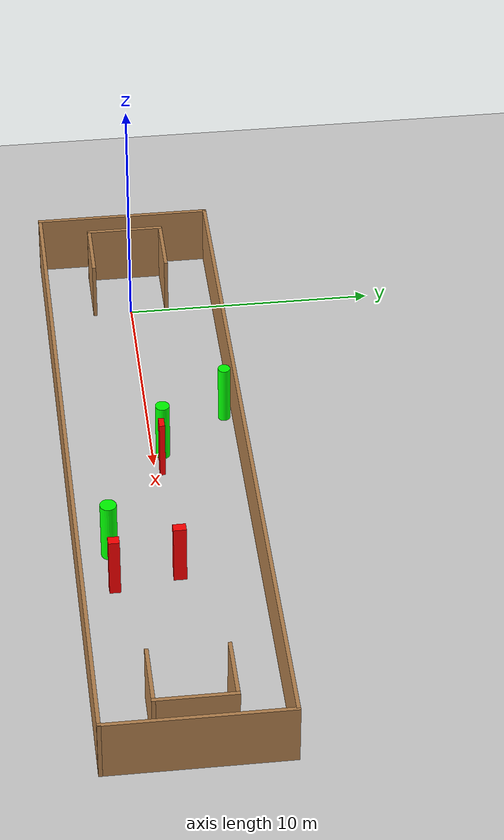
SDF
<sdf version="1.7">
 <world name="default">
  <light name="sun" type="directional">
   <pose>0 0 10 0 -0 0</pose>
   <diffuse>0.8 0.8 0.8 1</diffuse>
   <specular>0.2 0.2 0.2 1</specular>
   <attenuation>
    <range>1000</range>
    <constant>0.9</constant>
    <linear>0.01</linear>
    <quadratic>0.001</quadratic>
   </attenuation>
   <direction>-0.5 0.1 -0.9</direction>
   <spot><inner_angle>0</inner_angle><outer_angle>0</outer_angle><falloff>0</falloff></spot>
  </light>
  <model name="ground_plane">
   <static>1</static>
   <link name="link">
    <collision name="collision">
     <geometry><plane><normal>0 0 1</normal><size>100 100</size></plane></geometry>
     <surface>
      <contact><collide_bitmask>65535</collide_bitmask></contact>
      <friction><ode><mu>100</mu><mu2>50</mu2></ode></friction>
     </surface>
    </collision>
    <visual name="visual">
     <cast_shadows>0</cast_shadows>
     <geometry><plane><normal>0 0 1</normal><size>100 100</size></plane></geometry>
     <material>
      <script><uri>file://media/materials/scripts/gazebo.material</uri><name>Gazebo/Grey</name></script>
     </material>
    </visual>
   </link>
  </model>
  <gravity>0 0 -9.8</gravity>
  <magnetic_field>6e-06 2.3e-05 -4.2e-05</magnetic_field>
  <atmosphere type="adiabatic"/>
  <physics type="ode">
   <max_step_size>0.001</max_step_size>
   <real_time_factor>1</real_time_factor>
   <real_time_update_rate>1000</real_time_update_rate>
  </physics>
  <scene><ambient>0.4 0.4 0.4 1</ambient><background>0.7 0.7 0.7 1</background><shadows>1</shadows></scene>
  <spherical_coordinates>
   <surface_model>EARTH_WGS84</surface_model>
   <latitude_deg>0</latitude_deg>
   <longitude_deg>0</longitude_deg>
   <elevation>0</elevation>
   <heading_deg>0</heading_deg>
  </spherical_coordinates>
  <model name="my_base_walls">
   <link name="Wall_0">
    <collision name="Wall_0_Collision">
     <geometry><box><size>7.15 0.15 2.5</size></box></geometry>
     <pose>0 0 1.25 0 -0 0</pose>
    </collision>
    <visual name="Wall_0_Visual">
     <pose>0 0 1.25 0 -0 0</pose>
     <geometry><box><size>7.15 0.15 2.5</size></box></geometry>
     <material>
      <script><uri>file://media/materials/scripts/gazebo.material</uri><name>Gazebo/Wood</name></script>
      <ambient>1 1 1 1</ambient>
     </material>
     <meta><layer>0</layer></meta>
    </visual>
    <pose>-15 0 0 0 -0 1.5708</pose>
   </link>
   <link name="Wall_10">
    <collision name="Wall_10_Collision">
     <geometry><box><size>2.65 0.15 2.5</size></box></geometry>
     <pose>0 0 1.25 0 -0 0</pose>
    </collision>
    <visual name="Wall_10_Visual">
     <pose>0 0 1.25 0 -0 0</pose>
     <geometry><box><size>2.65 0.15 2.5</size></box></geometry>
     <material>
      <script><uri>file://media/materials/scripts/gazebo.material</uri><name>Gazebo/Wood</name></script>
      <ambient>1 1 1 1</ambient>
     </material>
     <meta><layer>0</layer></meta>
    </visual>
    <pose>-12.75 -1.5 0 0 -0 0</pose>
   </link>
   <link name="Wall_12">
    <collision name="Wall_12_Collision">
     <geometry><box><size>2.65 0.15 2.5</size></box></geometry>
     <pose>0 0 1.25 0 -0 0</pose>
    </collision>
    <visual name="Wall_12_Visual">
     <pose>0 0 1.25 0 -0 0</pose>
     <geometry><box><size>2.65 0.15 2.5</size></box></geometry>
     <material>
      <script><uri>file://media/materials/scripts/gazebo.material</uri><name>Gazebo/Wood</name></script>
      <ambient>1 1 1 1</ambient>
     </material>
     <meta><layer>0</layer></meta>
    </visual>
    <pose>-12.75 1.5 0 0 -0 0</pose>
   </link>
   <link name="Wall_14">
    <collision name="Wall_14_Collision">
     <geometry><box><size>3.15 0.15 2.5</size></box></geometry>
     <pose>0 0 1.25 0 -0 0</pose>
    </collision>
    <visual name="Wall_14_Visual">
     <pose>0 0 1.25 0 -0 0</pose>
     <geometry><box><size>3.15 0.15 2.5</size></box></geometry>
     <material>
      <script><uri>file://media/materials/scripts/gazebo.material</uri><name>Gazebo/Wood</name></script>
      <ambient>1 1 1 1</ambient>
     </material>
     <meta><layer>0</layer></meta>
    </visual>
    <pose>14 0 0 0 -0 -1.5708</pose>
   </link>
   <link name="Wall_15">
    <collision name="Wall_15_Collision">
     <geometry><box><size>2.65 0.15 2.5</size></box></geometry>
     <pose>0 0 1.25 0 -0 0</pose>
    </collision>
    <visual name="Wall_15_Visual">
     <pose>0 0 1.25 0 -0 0</pose>
     <geometry><box><size>2.65 0.15 2.5</size></box></geometry>
     <material>
      <script><uri>file://media/materials/scripts/gazebo.material</uri><name>Gazebo/Wood</name></script>
      <ambient>1 1 1 1</ambient>
     </material>
     <meta><layer>0</layer></meta>
    </visual>
    <pose>12.75 -1.5 0 0 -0 3.14159</pose>
   </link>
   <link name="Wall_17">
    <collision name="Wall_17_Collision">
     <geometry><box><size>2.65 0.15 2.5</size></box></geometry>
     <pose>0 0 1.25 0 -0 0</pose>
    </collision>
    <visual name="Wall_17_Visual">
     <pose>0 0 1.25 0 -0 0</pose>
     <geometry><box><size>2.65 0.15 2.5</size></box></geometry>
     <material>
      <script><uri>file://media/materials/scripts/gazebo.material</uri><name>Gazebo/Wood</name></script>
      <ambient>1 1 1 1</ambient>
     </material>
     <meta><layer>0</layer></meta>
    </visual>
    <pose>12.75 1.5 0 0 -0 3.14159</pose>
   </link>
   <link name="Wall_2">
    <collision name="Wall_2_Collision">
     <geometry><box><size>30.15 0.15 2.5</size></box></geometry>
     <pose>0 0 1.25 0 -0 0</pose>
    </collision>
    <visual name="Wall_2_Visual">
     <pose>0 0 1.25 0 -0 0</pose>
     <geometry><box><size>30.15 0.15 2.5</size></box></geometry>
     <material>
      <script><uri>file://media/materials/scripts/gazebo.material</uri><name>Gazebo/Wood</name></script>
      <ambient>1 1 1 1</ambient>
     </material>
     <meta><layer>0</layer></meta>
    </visual>
    <pose>-0 -3.5 0 0 -0 0</pose>
   </link>
   <link name="Wall_4">
    <collision name="Wall_4_Collision">
     <geometry><box><size>30.15 0.15 2.5</size></box></geometry>
     <pose>0 0 1.25 0 -0 0</pose>
    </collision>
    <visual name="Wall_4_Visual">
     <pose>0 0 1.25 0 -0 0</pose>
     <geometry><box><size>30.15 0.15 2.5</size></box></geometry>
     <material>
      <script><uri>file://media/materials/scripts/gazebo.material</uri><name>Gazebo/Wood</name></script>
      <ambient>1 1 1 1</ambient>
     </material>
     <meta><layer>0</layer></meta>
    </visual>
    <pose>-0 3.5 0 0 -0 0</pose>
   </link>
   <link name="Wall_6">
    <collision name="Wall_6_Collision">
     <geometry><box><size>7.15 0.15 2.5</size></box></geometry>
     <pose>0 0 1.25 0 -0 0</pose>
    </collision>
    <visual name="Wall_6_Visual">
     <pose>0 0 1.25 0 -0 0</pose>
     <geometry><box><size>7.15 0.15 2.5</size></box></geometry>
     <material>
      <script><uri>file://media/materials/scripts/gazebo.material</uri><name>Gazebo/Wood</name></script>
      <ambient>1 1 1 1</ambient>
     </material>
     <meta><layer>0</layer></meta>
    </visual>
    <pose>15 0 0 0 -0 -1.5708</pose>
   </link>
   <link name="Wall_9">
    <collision name="Wall_9_Collision">
     <geometry><box><size>3.15 0.15 2.5</size></box></geometry>
     <pose>0 0 1.25 0 -0 0</pose>
    </collision>
    <visual name="Wall_9_Visual">
     <pose>0 0 1.25 0 -0 0</pose>
     <geometry><box><size>3.15 0.15 2.5</size></box></geometry>
     <material>
      <script><uri>file://media/materials/scripts/gazebo.material</uri><name>Gazebo/Wood</name></script>
      <ambient>1 1 1 1</ambient>
     </material>
     <meta><layer>0</layer></meta>
    </visual>
    <pose>-14 0 0 0 -0 -1.5708</pose>
   </link>
   <static>1</static>
   <pose>11.5 0 0 0 -0 0</pose>
  </model>
  <model name="cylinder1">
   <static>1</static>
   <link name="link">
    <inertial>
     <mass>1</mass>
     <inertia><ixx>0.5</ixx><ixy>0</ixy><ixz>0</ixz><iyy>0.5</iyy><iyz>0</iyz><izz>1</izz></inertia>
    </inertial>
    <collision name="collision">
     <geometry><cylinder><radius>0.32158949418835286</radius><length>2.5</length></cylinder></geometry>
    </collision>
    <visual name="visual">
     <geometry><cylinder><radius>0.32158949418835286</radius><length>2.5</length></cylinder></geometry>
     <material>
      <ambient>0 1 0 1</ambient>
      <diffuse>0 1 0 1</diffuse>
      <specular>0.1 0.1 0.1 1</specular>
      <emissive>0 0 0 0</emissive>
     </material>
    </visual>
   </link>
   <pose>15.0246054937257 -2.189859613960496 1.25 0 0 0</pose>
  </model>
  <model name="cylinder2">
   <static>1</static>
   <link name="link">
    <inertial>
     <mass>1</mass>
     <inertia><ixx>0.5</ixx><ixy>0</ixy><ixz>0</ixz><iyy>0.5</iyy><iyz>0</iyz><izz>1</izz></inertia>
    </inertial>
    <collision name="collision">
     <geometry><cylinder><radius>0.2819125879764696</radius><length>2.5</length></cylinder></geometry>
    </collision>
    <visual name="visual">
     <geometry><cylinder><radius>0.2819125879764696</radius><length>2.5</length></cylinder></geometry>
     <material>
      <ambient>0 1 0 1</ambient>
      <diffuse>0 1 0 1</diffuse>
      <specular>0.1 0.1 0.1 1</specular>
      <emissive>0 0 0 0</emissive>
     </material>
    </visual>
   </link>
   <pose>9.387049777928866 0.4214647074033335 1.25 0 0 0</pose>
  </model>
  <model name="cylinder3">
   <static>1</static>
   <link name="link">
    <inertial>
     <mass>1</mass>
     <inertia><ixx>0.5</ixx><ixy>0</ixy><ixz>0</ixz><iyy>0.5</iyy><iyz>0</iyz><izz>1</izz></inertia>
    </inertial>
    <collision name="collision">
     <geometry><cylinder><radius>0.24429255434505875</radius><length>2.5</length></cylinder></geometry>
    </collision>
    <visual name="visual">
     <geometry><cylinder><radius>0.24429255434505875</radius><length>2.5</length></cylinder></geometry>
     <material>
      <ambient>0 1 0 1</ambient>
      <diffuse>0 1 0 1</diffuse>
      <specular>0.1 0.1 0.1 1</specular>
      <emissive>0 0 0 0</emissive>
     </material>
    </visual>
   </link>
   <pose>7.335770835054786 3.098485432951496 1.25 0 0 0</pose>
  </model>
  <model name="box1">
   <static>1</static>
   <link name="link">
    <inertial>
     <mass>1</mass>
     <inertia><ixx>0.083</ixx><ixy>0</ixy><ixz>0</ixz><iyy>0.083</iyy><iyz>0</iyz><izz>0.083</izz></inertia>
    </inertial>
    <collision name="collision">
     <geometry><box><size>0.4878558584163008 0.2191166981518663 2.5</size></box></geometry>
    </collision>
    <visual name="visual">
     <geometry><box><size>0.4878558584163008 0.2191166981518663 2.5</size></box></geometry>
     <material>
      <ambient>1 0 0 1</ambient>
      <diffuse>1 0 0 1</diffuse>
      <specular>0.1 0.1 0.1 1</specular>
      <emissive>0 0 0 0</emissive>
     </material>
    </visual>
    <sensor name="my_contact" type="contact">
     <contact><collision>box_collision</collision><topic>__default_topic__</topic></contact>
    </sensor>
   </link>
   <pose>10.390996826051595 0.2933441155866445 1.25 0 0 0</pose>
  </model>
  <model name="box2">
   <static>1</static>
   <link name="link">
    <inertial>
     <mass>1</mass>
     <inertia><ixx>0.083</ixx><ixy>0</ixy><ixz>0</ixz><iyy>0.083</iyy><iyz>0</iyz><izz>0.083</izz></inertia>
    </inertial>
    <collision name="collision">
     <geometry><box><size>0.3737549383590334 0.4309948531952708 2.5</size></box></geometry>
    </collision>
    <visual name="visual">
     <geometry><box><size>0.3737549383590334 0.4309948531952708 2.5</size></box></geometry>
     <material>
      <ambient>1 0 0 1</ambient>
      <diffuse>1 0 0 1</diffuse>
      <specular>0.1 0.1 0.1 1</specular>
      <emissive>0 0 0 0</emissive>
     </material>
    </visual>
    <sensor name="my_contact" type="contact">
     <contact><collision>box_collision</collision><topic>__default_topic__</topic></contact>
    </sensor>
   </link>
   <pose>17.025970189984193 -2.159071978291932 1.25 0 0 0</pose>
  </model>
  <model name="box3">
   <static>1</static>
   <link name="link">
    <inertial>
     <mass>1</mass>
     <inertia><ixx>0.083</ixx><ixy>0</ixy><ixz>0</ixz><iyy>0.083</iyy><iyz>0</iyz><izz>0.083</izz></inertia>
    </inertial>
    <collision name="collision">
     <geometry><box><size>0.3583761135380386 0.5005841460331601 2.5</size></box></geometry>
    </collision>
    <visual name="visual">
     <geometry><box><size>0.3583761135380386 0.5005841460331601 2.5</size></box></geometry>
     <material>
      <ambient>1 0 0 1</ambient>
      <diffuse>1 0 0 1</diffuse>
      <specular>0.1 0.1 0.1 1</specular>
      <emissive>0 0 0 0</emissive>
     </material>
    </visual>
    <sensor name="my_contact" type="contact">
     <contact><collision>box_collision</collision><topic>__default_topic__</topic></contact>
    </sensor>
   </link>
   <pose>16.58861840685988 0.35145674020705897 1.25 0 0 0</pose>
  </model>
 </world>
</sdf>
